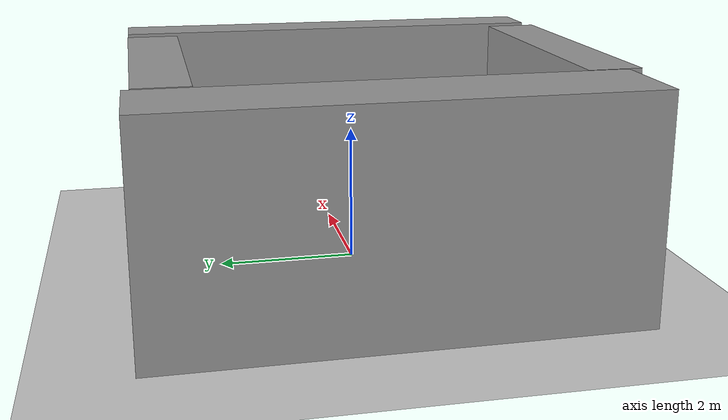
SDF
<sdf version="1.6">
 <world name="default">
  <light name="sun" type="directional">
   <pose>0 0 10 0 -0 0</pose>
   <diffuse>0.8 0.8 0.8 1</diffuse>
   <specular>0.1 0.1 0.1 1</specular>
   <attenuation>
    <range>1000</range>
    <constant>0.9</constant>
    <linear>0.01</linear>
    <quadratic>0.001</quadratic>
   </attenuation>
   <direction>-0.5 0.5 -1</direction>
  </light>
  <model name="ground_plane">
   <static>1</static>
   <link name="link">
    <collision name="collision">
     <geometry><plane><normal>0 0 1</normal><size>100 100</size></plane></geometry>
     <surface><friction><ode><mu>100</mu><mu2>50</mu2></ode></friction></surface>
    </collision>
    <visual name="visual">
     <cast_shadows>0</cast_shadows>
     <geometry><plane><normal>0 0 1</normal><size>100 100</size></plane></geometry>
     <material>
      <script><uri>file://media/materials/scripts/gazebo.material</uri><name>Gazebo/Grey</name></script>
     </material>
    </visual>
   </link>
  </model>
  <gravity>0 0 -9.8</gravity>
  <magnetic_field>6e-06 2.3e-05 -4.2e-05</magnetic_field>
  <atmosphere type="adiabatic"/>
  <physics name="default_physics" default="0" type="ode">
   <max_step_size>0.001</max_step_size>
   <real_time_factor>1</real_time_factor>
   <real_time_update_rate>1000</real_time_update_rate>
  </physics>
  <scene><ambient>0.4 0.4 0.4 1</ambient><background>0.7 0.7 0.7 1</background><shadows>1</shadows></scene>
  <spherical_coordinates>
   <surface_model>EARTH_WGS84</surface_model>
   <latitude_deg>0</latitude_deg>
   <longitude_deg>0</longitude_deg>
   <elevation>0</elevation>
   <heading_deg>0</heading_deg>
  </spherical_coordinates>
  <model name="unit_box_1_clone_clone">
   <pose>-0.084636 2.80477 1.58591 2.6e-05 -2e-06 -1.56308</pose>
   <link name="link">
    <inertial>
     <mass>1</mass>
     <inertia>
      <ixx>0.166667</ixx>
      <ixy>0</ixy>
      <ixz>0</ixz>
      <iyy>0.166667</iyy>
      <iyz>0</iyz>
      <izz>0.166667</izz>
     </inertia>
    </inertial>
    <collision name="collision"><geometry><box><size>0.769515 4.03056 3.17193</size></box></geometry></collision>
    <visual name="visual">
     <geometry><box><size>0.769515 4.03056 3.17193</size></box></geometry>
     <material>
      <script><name>Gazebo/Grey</name><uri>file://media/materials/scripts/gazebo.material</uri></script>
     </material>
    </visual>
   </link>
  </model>
  <model name="unit_box_1_clone_clone_clone">
   <pose>-0.077337 -3.16349 1.58591 2.5e-05 2e-06 -1.55447</pose>
   <link name="link">
    <inertial>
     <mass>1</mass>
     <inertia>
      <ixx>0.166667</ixx>
      <ixy>0</ixy>
      <ixz>0</ixz>
      <iyy>0.166667</iyy>
      <iyz>0</iyz>
      <izz>0.166667</izz>
     </inertia>
    </inertial>
    <collision name="collision"><geometry><box><size>0.769516 4.03056 3.17193</size></box></geometry></collision>
    <visual name="visual">
     <geometry><box><size>0.769516 4.03056 3.17193</size></box></geometry>
     <material>
      <script><name>Gazebo/Grey</name><uri>file://media/materials/scripts/gazebo.material</uri></script>
     </material>
    </visual>
   </link>
  </model>
  <model name="unit_box_1_clone_clone_clone_clone">
   <pose>2.63879 -0.123337 1.58311 -0.000859 2e-06 -3.13944</pose>
   <link name="link">
    <inertial>
     <mass>1</mass>
     <inertia>
      <ixx>0.166667</ixx>
      <ixy>0</ixy>
      <ixz>0</ixz>
      <iyy>0.166667</iyy>
      <iyz>0</iyz>
      <izz>0.166667</izz>
     </inertia>
    </inertial>
    <collision name="collision"><geometry><box><size>0.769515 6.65632 3.17193</size></box></geometry></collision>
    <visual name="visual">
     <geometry><box><size>0.769515 6.65632 3.17193</size></box></geometry>
     <material>
      <script><name>Gazebo/Grey</name><uri>file://media/materials/scripts/gazebo.material</uri></script>
     </material>
    </visual>
   </link>
  </model>
  <model name="unit_box_1_clone_clone_clone_clone_clone">
   <pose>-2.8053 -0.054739 1.58311 0.000859 -2e-06 -3.13944</pose>
   <link name="link">
    <inertial>
     <mass>1</mass>
     <inertia>
      <ixx>0.166667</ixx>
      <ixy>0</ixy>
      <ixz>0</ixz>
      <iyy>0.166667</iyy>
      <iyz>0</iyz>
      <izz>0.166667</izz>
     </inertia>
    </inertial>
    <collision name="collision"><geometry><box><size>1.3556 6.65632 3.17193</size></box></geometry></collision>
    <visual name="visual">
     <geometry><box><size>1.3556 6.65632 3.17193</size></box></geometry>
     <material>
      <script><name>Gazebo/Grey</name><uri>file://media/materials/scripts/gazebo.material</uri></script>
     </material>
    </visual>
   </link>
  </model>
 </world>
</sdf>
